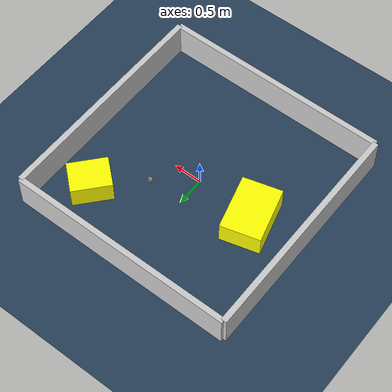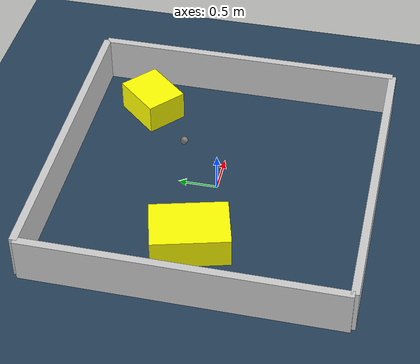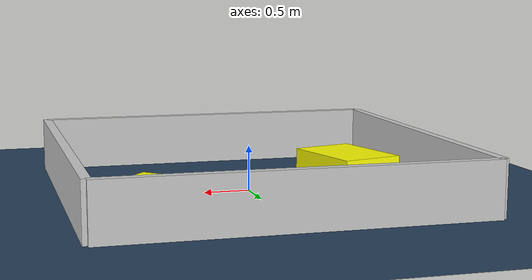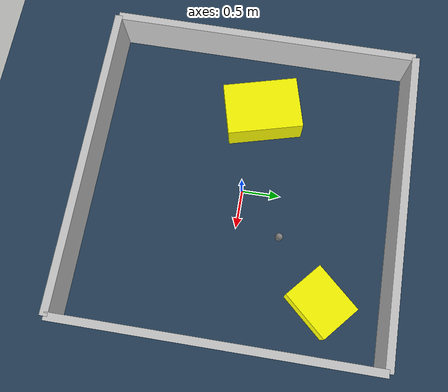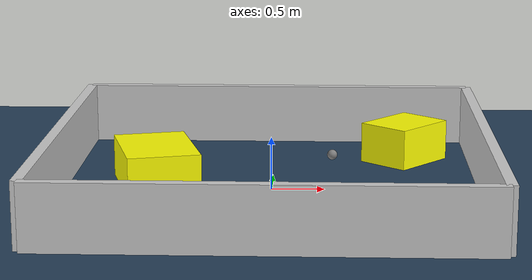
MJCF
<?xml version="1.0" ?>
<mujoco model="generated_environment">
  <option timestep="0.01" integrator="RK4" cone="elliptic"/>
  <default>
    <geom density="1"/>
  </default>
  <asset>
    <texture builtin="gradient" height="3072" rgb1="0.3 0.5 0.7" rgb2="0 0 0" type="skybox" width="512"/>
    <texture builtin="checker" height="300" mark="edge" markrgb="0.8 0.8 0.8" name="groundplane" rgb1="0.2 0.3 0.4" rgb2="0.1 0.2 0.3" type="2d" width="300"/>
    <material name="groundplane" reflectance="0.2" texrepeat="5 5" texture="groundplane" texuniform="true"/>
    <material name="robot" rgba="0.0 1.0 0.0 1"/>
  </asset>
  <worldbody>
    <light dir="0 0 -1" directional="true" pos="0 0 1.5"/>
    <geom condim="4" friction="1.0 0.005 0.001" material="groundplane" name="floor" size="0 0 0.05" type="plane"/>
    <body name="walls">
      <geom name="wall_1" condim="4" pos="-2.0 0.0 0.3" rgba="0.800000011920929 0.800000011920929 0.800000011920929 1.0" size="0.05 2.0 0.3" type="box"/>
      <geom name="wall_2" condim="4" pos="2.0 0.0 0.3" rgba="0.800000011920929 0.800000011920929 0.800000011920929 1.0" size="0.05 2.0 0.3" type="box"/>
      <geom name="wall_3" condim="4" pos="0.0 -2.0 0.3" rgba="0.800000011920929 0.800000011920929 0.800000011920929 1.0" size="2.0 0.05 0.3" type="box"/>
      <geom name="wall_4" condim="4" pos="0.0 2.0 0.3" rgba="0.800000011920929 0.800000011920929 0.800000011920929 1.0" size="2.0 0.05 0.3" type="box"/>
    </body>
    <body name="robot">
      <joint name="joint_x" type="slide" pos="0 0 0" axis="1 0 0"/>
      <joint name="joint_y" type="slide" pos="0 0 0" axis="0 1 0"/>
      <geom name="robot" type="sphere" pos="0.5760158174270473 0.5685188118385271 0.2" size="0.05" mass="5." friction="1.0 0.005 0.0001" condim="4"/>
      <site name="sensor_ball"/>
    </body>
    <body name="obstacle_1_movable">
      <geom name="obstacle_1_movable" condim="4" pos="-1.1003200799727861 0.10269344092768273 0.2" euler="0 0 15.09250152712526" friction="1.0 0.005 0.001" rgba="1 1 0 1" size="0.34543939296086595 0.4921028103076348 0.2" type="box" mass="0.1"/>
      <joint type="free"/>
    </body>
    <body name="obstacle_2_movable">
      <geom name="obstacle_2_movable" condim="4" pos="1.3097144695693874 1.1812486420986605 0.2" euler="0 0 48.66574341572681" friction="1.0 0.005 0.001" rgba="1 1 0 1" size="0.3437213526388342 0.27519536667229444 0.2" type="box" mass="0.1"/>
      <joint type="free"/>
    </body>
  </worldbody>
  <actuator>
    <motor name="actuator_x" joint="joint_x" gear="1" ctrlrange="-1 1"/>
    <motor name="actuator_y" joint="joint_y" gear="1" ctrlrange="-1 1"/>
  </actuator>
</mujoco>
